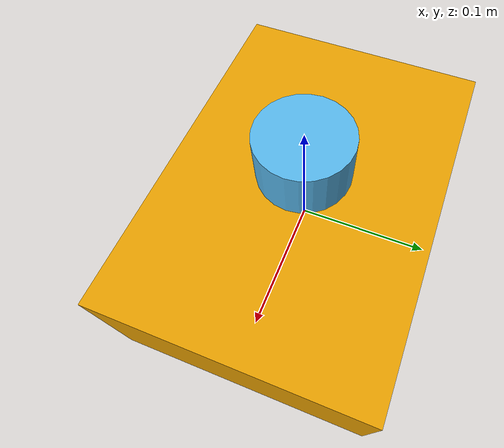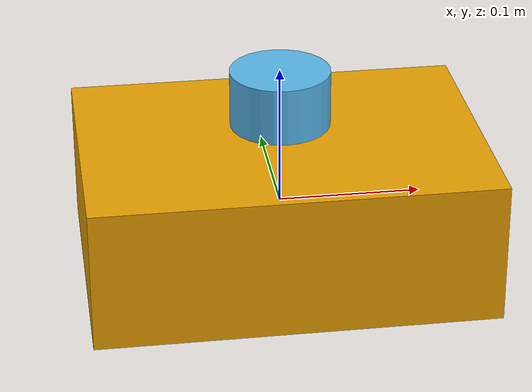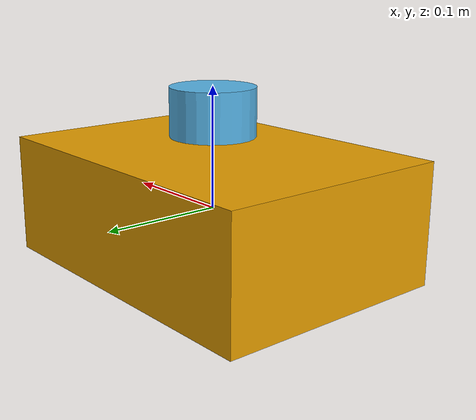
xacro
<?xml version="1.0"?>
<robot xmlns:xacro="http://www.ros.org/wiki/xacro" name="line_follower_v6">
  <!-- V6: Full Autonomous AMR (2D 360-degree LiDAR + Depth Camera + IMU) -->
  <link name="base_link">
    <visual><geometry><box size="0.28 0.20 0.10"/></geometry></visual>
    <inertial><mass value="2.2"/><inertia ixx="0.009" ixy="0" ixz="0" iyy="0.015" iyz="0" izz="0.021"/></inertial>
  </link>

  <!-- 2D Planar 360 LiDAR -->
  <link name="lidar_link">
    <visual><geometry><cylinder radius="0.035" length="0.04"/></geometry></visual>
  </link>
  <joint name="lidar_joint" type="fixed">
    <parent link="base_link"/>
    <child link="lidar_link"/>
    <origin xyz="0 0 0.08" rpy="0 0 0"/>
  </joint>
</robot>
